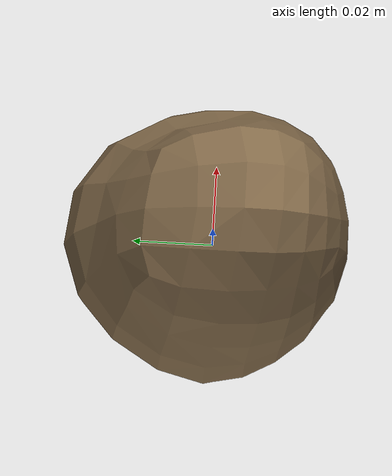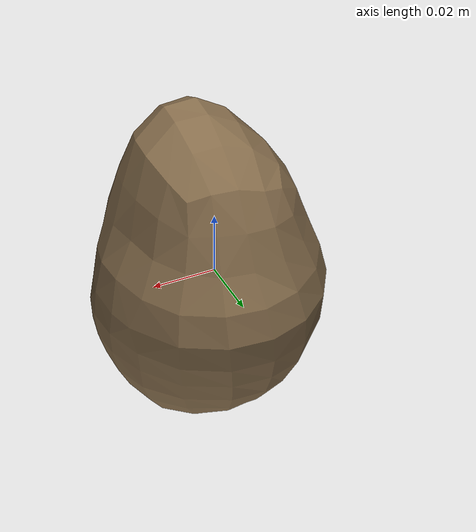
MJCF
<mujoco model="Potato_2">
  <compiler autolimits="true" boundmass="0.01" angle="radian"/>
  <default>
    <default class="/">
      <default class="__VISUAL_MJT__">
        <geom contype="0" conaffinity="0" group="0"/>
      </default>
      <default class="__STRUCTURAL_MJT__">
        <geom contype="8" conaffinity="15" group="4" friction="0.90000000000000002 0.90000000000000002 0.001" solref="0.025000000000000001 1" solimp="0.998 0.998 0.001"/>
      </default>
      <default class="__DYNAMIC_MJT__">
        <geom contype="1" conaffinity="15" group="4" friction="0.90000000000000002 0.90000000000000002 0.001" solref="0.025000000000000001 1" solimp="0.998 0.998 0.001"/>
      </default>
    </default>
  </default>
  <asset>
    <texture name="Potato1_Mat2" type="2d" file="Potato1_AlbedoTransparency.png"/>
    <material name="material_Potato1_Mat2" class="/" texture="Potato1_Mat2" specular="0.5" shininess="0.5" rgba="0.69852939999999997 0.59066830000000003 0.434 1"/>
    <mesh name="Potato_2_potato_a2" class="/" file="Potato_2_potato_a2/Potato_2_potato_a2.obj" scale="1 1 1"/>
  </asset>
  <worldbody>
    <body name="Potato_2">
      <joint name="Potato_2_free" class="/" type="free" pos="0 0 0" axis="0 0 1" stiffness="0" range="0 0" armature="0" damping="0.10000000000000001" frictionloss="0"/>
      <body name="Potato_2_potato_a2" pos="0.00055999999999999995 -0.0067200000000000003 -0.0037499999999999999" quat="1 0 0 0">
        <geom name="Potato_2_potato_a2" class="__VISUAL_MJT__" type="mesh" material="material_Potato1_Mat2" shellinertia="true" mesh="Potato_2_potato_a2"/>
        <geom name="Potato_2_PrimitiveCollider_0" class="__DYNAMIC_MJT__" type="capsule" size="0.03175818920135498 0.022890627384185791" rgba="0 1 0 1" pos="0.00056215375661849976 0.0067228851839900017 0.0037452783435583115" quat="1.4751396609986736e-06 0.99999999999891198 0 0"/>
      </body>
    </body>
  </worldbody>
</mujoco>
